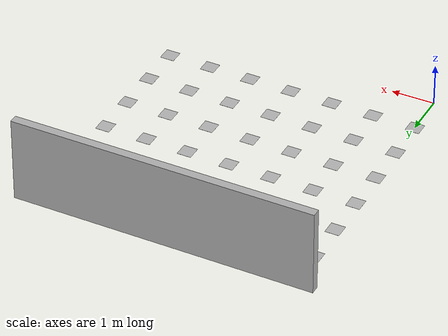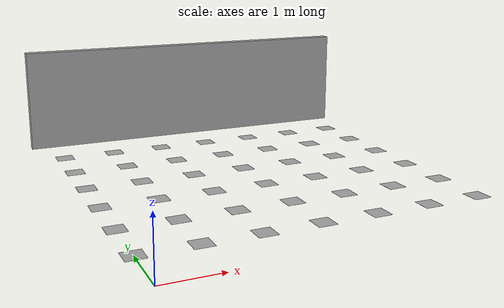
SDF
<sdf version="1.5">
 <world name="default">
  <include><uri>model://sun</uri></include>
  <include><uri>model://aruco_7x7</uri></include>
  <scene>
   <ambient>0.8 0.8 0.8 1</ambient>
   <background>0.8 0.9 1 1</background>
   <shadows>false</shadows>
   <grid>false</grid>
   <origin_visual>false</origin_visual>
  </scene>
  <physics name="default_physics" default="0" type="ode">
   <gravity>0 0 -9.8066</gravity>
   <ode>
    <solver>
     <type>quick</type>
     <iters>10</iters>
     <sor>1.3</sor>
     <use_dynamic_moi_rescaling>0</use_dynamic_moi_rescaling>
    </solver>
    <constraints>
     <cfm>0</cfm>
     <erp>0.2</erp>
     <contact_max_correcting_vel>100</contact_max_correcting_vel>
     <contact_surface_layer>0.001</contact_surface_layer>
    </constraints>
   </ode>
   <max_step_size>0.004</max_step_size>
   <real_time_factor>1</real_time_factor>
   <real_time_update_rate>250</real_time_update_rate>
   <magnetic_field>6.0e-6 2.3e-5 -4.2e-5</magnetic_field>
  </physics>
  <model name="vertical_wall">
   <static>true</static>
   <link name="link">
    <collision name="collision"><geometry><box><size>7 0.2 2</size></box></geometry></collision>
    <visual name="visual">
     <geometry><box><size>7 0.2 2</size></box></geometry>
     <material>
      <ambient>0.5 0.5 0.5 1</ambient>
      <diffuse>0.7 0.7 0.7 1</diffuse>
      <specular>0.8 0.8 0.8 1</specular>
     </material>
    </visual>
   </link>
   <pose>3 7 1 0 0 0</pose>
  </model>
 </world>
</sdf>

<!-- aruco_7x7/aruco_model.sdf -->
<sdf version="1.6">
  <model name="aruco_marker">
    <static>true</static>
    <link name="link">

      <visual name="0">
        <pose>0.0 6.0 0 0 0 0</pose>
        <geometry>
          <box>
            <size>0.33 0.33 0.001</size>
          </box>
        </geometry>
        <material>
          <script>
            <uri>model://aruco_7x7/materials/scripts</uri>
            <uri>model://aruco_7x7/materials/textures</uri>
            <name>aruco/marker_2_0</name>
          </script>
        </material>
      </visual>

      <visual name="1">
        <pose>1.0 6.0 0 0 0 0</pose>
        <geometry>
          <box>
            <size>0.33 0.33 0.001</size>
          </box>
        </geometry>
        <material>
          <script>
            <uri>model://aruco_7x7/materials/scripts</uri>
            <uri>model://aruco_7x7/materials/textures</uri>
            <name>aruco/marker_2_1</name>
          </script>
        </material>
      </visual>

      <visual name="10">
        <pose>2.0 6.0 0 0 0 0</pose>
        <geometry>
          <box>
            <size>0.33 0.33 0.001</size>
          </box>
        </geometry>
        <material>
          <script>
            <uri>model://aruco_7x7/materials/scripts</uri>
            <uri>model://aruco_7x7/materials/textures</uri>
            <name>aruco/marker_2_10</name>
          </script>
        </material>
      </visual>

      <visual name="11">
        <pose>3.0 6.0 0 0 0 0</pose>
        <geometry>
          <box>
            <size>0.33 0.33 0.001</size>
          </box>
        </geometry>
        <material>
          <script>
            <uri>model://aruco_7x7/materials/scripts</uri>
            <uri>model://aruco_7x7/materials/textures</uri>
            <name>aruco/marker_2_11</name>
          </script>
        </material>
      </visual>

      <visual name="12">
        <pose>4.0 6.0 0 0 0 0</pose>
        <geometry>
          <box>
            <size>0.33 0.33 0.001</size>
          </box>
        </geometry>
        <material>
          <script>
            <uri>model://aruco_7x7/materials/scripts</uri>
            <uri>model://aruco_7x7/materials/textures</uri>
            <name>aruco/marker_2_12</name>
          </script>
        </material>
      </visual>

      <visual name="13">
        <pose>5.0 6.0 0 0 0 0</pose>
        <geometry>
          <box>
            <size>0.33 0.33 0.001</size>
          </box>
        </geometry>
        <material>
          <script>
            <uri>model://aruco_7x7/materials/scripts</uri>
            <uri>model://aruco_7x7/materials/textures</uri>
            <name>aruco/marker_2_13</name>
          </script>
        </material>
      </visual>

      <visual name="14">
        <pose>6.0 6.0 0 0 0 0</pose>
        <geometry>
          <box>
            <size>0.33 0.33 0.001</size>
          </box>
        </geometry>
        <material>
          <script>
            <uri>model://aruco_7x7/materials/scripts</uri>
            <uri>model://aruco_7x7/materials/textures</uri>
            <name>aruco/marker_2_14</name>
          </script>
        </material>
      </visual>

      <visual name="15">
        <pose>0.0 5.0 0 0 0 0</pose>
        <geometry>
          <box>
            <size>0.33 0.33 0.001</size>
          </box>
        </geometry>
        <material>
          <script>
            <uri>model://aruco_7x7/materials/scripts</uri>
            <uri>model://aruco_7x7/materials/textures</uri>
            <name>aruco/marker_2_15</name>
          </script>
        </material>
      </visual>

      <visual name="16">
        <pose>1.0 5.0 0 0 0 0</pose>
        <geometry>
          <box>
            <size>0.33 0.33 0.001</size>
          </box>
        </geometry>
        <material>
          <script>
            <uri>model://aruco_7x7/materials/scripts</uri>
            <uri>model://aruco_7x7/materials/textures</uri>
            <name>aruco/marker_2_16</name>
          </script>
        </material>
      </visual>

      <visual name="18">
        <pose>2.0 5.0 0 0 0 0</pose>
        <geometry>
          <box>
            <size>0.33 0.33 0.001</size>
          </box>
        </geometry>
        <material>
          <script>
            <uri>model://aruco_7x7/materials/scripts</uri>
            <uri>model://aruco_7x7/materials/textures</uri>
            <name>aruco/marker_2_18</name>
          </script>
        </material>
      </visual>

      <visual name="19">
        <pose>3.0 5.0 0 0 0 0</pose>
        <geometry>
          <box>
            <size>0.33 0.33 0.001</size>
          </box>
        </geometry>
        <material>
          <script>
            <uri>model://aruco_7x7/materials/scripts</uri>
            <uri>model://aruco_7x7/materials/textures</uri>
            <name>aruco/marker_2_19</name>
          </script>
        </material>
      </visual>

      <visual name="2">
        <pose>4.0 5.0 0 0 0 0</pose>
        <geometry>
          <box>
            <size>0.33 0.33 0.001</size>
          </box>
        </geometry>
        <material>
          <script>
            <uri>model://aruco_7x7/materials/scripts</uri>
            <uri>model://aruco_7x7/materials/textures</uri>
            <name>aruco/marker_2_2</name>
          </script>
        </material>
      </visual>

      <visual name="20">
        <pose>5.0 5.0 0 0 0 0</pose>
        <geometry>
          <box>
            <size>0.33 0.33 0.001</size>
          </box>
        </geometry>
        <material>
          <script>
            <uri>model://aruco_7x7/materials/scripts</uri>
            <uri>model://aruco_7x7/materials/textures</uri>
            <name>aruco/marker_2_20</name>
          </script>
        </material>
      </visual>

      <visual name="21">
        <pose>6.0 5.0 0 0 0 0</pose>
        <geometry>
          <box>
            <size>0.33 0.33 0.001</size>
          </box>
        </geometry>
        <material>
          <script>
            <uri>model://aruco_7x7/materials/scripts</uri>
            <uri>model://aruco_7x7/materials/textures</uri>
            <name>aruco/marker_2_21</name>
          </script>
        </material>
      </visual>

      <visual name="22">
        <pose>0.0 4.0 0 0 0 0</pose>
        <geometry>
          <box>
            <size>0.33 0.33 0.001</size>
          </box>
        </geometry>
        <material>
          <script>
            <uri>model://aruco_7x7/materials/scripts</uri>
            <uri>model://aruco_7x7/materials/textures</uri>
            <name>aruco/marker_2_22</name>
          </script>
        </material>
      </visual>

      <visual name="23">
        <pose>1.0 4.0 0 0 0 0</pose>
        <geometry>
          <box>
            <size>0.33 0.33 0.001</size>
          </box>
        </geometry>
        <material>
          <script>
            <uri>model://aruco_7x7/materials/scripts</uri>
            <uri>model://aruco_7x7/materials/textures</uri>
            <name>aruco/marker_2_23</name>
          </script>
        </material>
      </visual>

      <visual name="24">
        <pose>2.0 4.0 0 0 0 0</pose>
        <geometry>
          <box>
            <size>0.33 0.33 0.001</size>
          </box>
        </geometry>
        <material>
          <script>
            <uri>model://aruco_7x7/materials/scripts</uri>
            <uri>model://aruco_7x7/materials/textures</uri>
            <name>aruco/marker_2_24</name>
          </script>
        </material>
      </visual>

      <visual name="25">
        <pose>3.0 4.0 0 0 0 0</pose>
        <geometry>
          <box>
            <size>0.33 0.33 0.001</size>
          </box>
        </geometry>
        <material>
          <script>
            <uri>model://aruco_7x7/materials/scripts</uri>
            <uri>model://aruco_7x7/materials/textures</uri>
            <name>aruco/marker_2_25</name>
          </script>
        </material>
      </visual>

      <visual name="26">
        <pose>4.0 4.0 0 0 0 0</pose>
        <geometry>
          <box>
            <size>0.33 0.33 0.001</size>
          </box>
        </geometry>
        <material>
          <script>
            <uri>model://aruco_7x7/materials/scripts</uri>
            <uri>model://aruco_7x7/materials/textures</uri>
            <name>aruco/marker_2_26</name>
          </script>
        </material>
      </visual>

      <visual name="27">
        <pose>5.0 4.0 0 0 0 0</pose>
        <geometry>
          <box>
            <size>0.33 0.33 0.001</size>
          </box>
        </geometry>
        <material>
          <script>
            <uri>model://aruco_7x7/materials/scripts</uri>
            <uri>model://aruco_7x7/materials/textures</uri>
            <name>aruco/marker_2_27</name>
          </script>
        </material>
      </visual>

      <visual name="28">
        <pose>6.0 4.0 0 0 0 0</pose>
        <geometry>
          <box>
            <size>0.33 0.33 0.001</size>
          </box>
        </geometry>
        <material>
          <script>
            <uri>model://aruco_7x7/materials/scripts</uri>
            <uri>model://aruco_7x7/materials/textures</uri>
            <name>aruco/marker_2_28</name>
          </script>
        </material>
      </visual>

      <visual name="29">
        <pose>0.0 3.0 0 0 0 0</pose>
        <geometry>
          <box>
            <size>0.33 0.33 0.001</size>
          </box>
        </geometry>
        <material>
          <script>
            <uri>model://aruco_7x7/materials/scripts</uri>
            <uri>model://aruco_7x7/materials/textures</uri>
            <name>aruco/marker_2_29</name>
          </script>
        </material>
      </visual>

      <visual name="3">
        <pose>1.0 3.0 0 0 0 0</pose>
        <geometry>
          <box>
            <size>0.33 0.33 0.001</size>
          </box>
        </geometry>
        <material>
          <script>
            <uri>model://aruco_7x7/materials/scripts</uri>
            <uri>model://aruco_7x7/materials/textures</uri>
            <name>aruco/marker_2_3</name>
          </script>
        </material>
      </visual>

      <visual name="30">
        <pose>2.0 3.0 0 0 0 0</pose>
        <geometry>
          <box>
            <size>0.33 0.33 0.001</size>
          </box>
        </geometry>
        <material>
          <script>
            <uri>model://aruco_7x7/materials/scripts</uri>
            <uri>model://aruco_7x7/materials/textures</uri>
            <name>aruco/marker_2_30</name>
          </script>
        </material>
      </visual>

      <visual name="31">
        <pose>3.0 3.0 0 0 0 0</pose>
        <geometry>
          <box>
            <size>0.33 0.33 0.001</size>
          </box>
        </geometry>
        <material>
          <script>
            <uri>model://aruco_7x7/materials/scripts</uri>
            <uri>model://aruco_7x7/materials/textures</uri>
            <name>aruco/marker_2_31</name>
          </script>
        </material>
      </visual>

      <visual name="32">
        <pose>4.0 3.0 0 0 0 0</pose>
        <geometry>
          <box>
            <size>0.33 0.33 0.001</size>
          </box>
        </geometry>
        <material>
          <script>
            <uri>model://aruco_7x7/materials/scripts</uri>
            <uri>model://aruco_7x7/materials/textures</uri>
            <name>aruco/marker_2_32</name>
          </script>
        </material>
      </visual>

      <visual name="33">
        <pose>5.0 3.0 0 0 0 0</pose>
        <geometry>
          <box>
            <size>0.33 0.33 0.001</size>
          </box>
        </geometry>
        <material>
          <script>
            <uri>model://aruco_7x7/materials/scripts</uri>
            <uri>model://aruco_7x7/materials/textures</uri>
            <name>aruco/marker_2_33</name>
          </script>
        </material>
      </visual>

      <visual name="34">
        <pose>6.0 3.0 0 0 0 0</pose>
        <geometry>
          <box>
            <size>0.33 0.33 0.001</size>
          </box>
        </geometry>
        <material>
          <script>
            <uri>model://aruco_7x7/materials/scripts</uri>
            <uri>model://aruco_7x7/materials/textures</uri>
            <name>aruco/marker_2_34</name>
          </script>
        </material>
      </visual>

      <visual name="35">
        <pose>0.0 2.0 0 0 0 0</pose>
        <geometry>
          <box>
            <size>0.33 0.33 0.001</size>
          </box>
        </geometry>
        <material>
          <script>
            <uri>model://aruco_7x7/materials/scripts</uri>
            <uri>model://aruco_7x7/materials/textures</uri>
            <name>aruco/marker_2_35</name>
          </script>
        </material>
      </visual>

      <visual name="36">
        <pose>1.0 2.0 0 0 0 0</pose>
        <geometry>
          <box>
            <size>0.33 0.33 0.001</size>
          </box>
        </geometry>
        <material>
          <script>
            <uri>model://aruco_7x7/materials/scripts</uri>
            <uri>model://aruco_7x7/materials/textures</uri>
            <name>aruco/marker_2_36</name>
          </script>
        </material>
      </visual>

      <visual name="37">
        <pose>2.0 2.0 0 0 0 0</pose>
        <geometry>
          <box>
            <size>0.33 0.33 0.001</size>
          </box>
        </geometry>
        <material>
          <script>
            <uri>model://aruco_7x7/materials/scripts</uri>
            <uri>model://aruco_7x7/materials/textures</uri>
            <name>aruco/marker_2_37</name>
          </script>
        </material>
      </visual>

      <visual name="38">
        <pose>3.0 2.0 0 0 0 0</pose>
        <geometry>
          <box>
            <size>0.33 0.33 0.001</size>
          </box>
        </geometry>
        <material>
          <script>
            <uri>model://aruco_7x7/materials/scripts</uri>
            <uri>model://aruco_7x7/materials/textures</uri>
            <name>aruco/marker_2_38</name>
          </script>
        </material>
      </visual>

      <visual name="39">
        <pose>4.0 2.0 0 0 0 0</pose>
        <geometry>
          <box>
            <size>0.33 0.33 0.001</size>
          </box>
        </geometry>
        <material>
          <script>
            <uri>model://aruco_7x7/materials/scripts</uri>
            <uri>model://aruco_7x7/materials/textures</uri>
            <name>aruco/marker_2_39</name>
          </script>
        </material>
      </visual>

      <visual name="4">
        <pose>5.0 2.0 0 0 0 0</pose>
        <geometry>
          <box>
            <size>0.33 0.33 0.001</size>
          </box>
        </geometry>
        <material>
          <script>
            <uri>model://aruco_7x7/materials/scripts</uri>
            <uri>model://aruco_7x7/materials/textures</uri>
            <name>aruco/marker_2_4</name>
          </script>
        </material>
      </visual>

      <visual name="40">
        <pose>6.0 2.0 0 0 0 0</pose>
        <geometry>
          <box>
            <size>0.33 0.33 0.001</size>
          </box>
        </geometry>
        <material>
          <script>
            <uri>model://aruco_7x7/materials/scripts</uri>
            <uri>model://aruco_7x7/materials/textures</uri>
            <name>aruco/marker_2_40</name>
          </script>
        </material>
      </visual>

      <visual name="41">
        <pose>0.0 1.0 0 0 0 0</pose>
        <geometry>
          <box>
            <size>0.33 0.33 0.001</size>
          </box>
        </geometry>
        <material>
          <script>
            <uri>model://aruco_7x7/materials/scripts</uri>
            <uri>model://aruco_7x7/materials/textures</uri>
            <name>aruco/marker_2_41</name>
          </script>
        </material>
      </visual>

      <visual name="42">
        <pose>1.0 1.0 0 0 0 0</pose>
        <geometry>
          <box>
            <size>0.33 0.33 0.001</size>
          </box>
        </geometry>
        <material>
          <script>
            <uri>model://aruco_7x7/materials/scripts</uri>
            <uri>model://aruco_7x7/materials/textures</uri>
            <name>aruco/marker_2_42</name>
          </script>
        </material>
      </visual>

      <visual name="43">
        <pose>2.0 1.0 0 0 0 0</pose>
        <geometry>
          <box>
            <size>0.33 0.33 0.001</size>
          </box>
        </geometry>
        <material>
          <script>
            <uri>model://aruco_7x7/materials/scripts</uri>
            <uri>model://aruco_7x7/materials/textures</uri>
            <name>aruco/marker_2_43</name>
          </script>
        </material>
      </visual>

      <visual name="44">
        <pose>3.0 1.0 0 0 0 0</pose>
        <geometry>
          <box>
            <size>0.33 0.33 0.001</size>
          </box>
        </geometry>
        <material>
          <script>
            <uri>model://aruco_7x7/materials/scripts</uri>
            <uri>model://aruco_7x7/materials/textures</uri>
            <name>aruco/marker_2_44</name>
          </script>
        </material>
      </visual>

      <visual name="45">
        <pose>4.0 1.0 0 0 0 0</pose>
        <geometry>
          <box>
            <size>0.33 0.33 0.001</size>
          </box>
        </geometry>
        <material>
          <script>
            <uri>model://aruco_7x7/materials/scripts</uri>
            <uri>model://aruco_7x7/materials/textures</uri>
            <name>aruco/marker_2_45</name>
          </script>
        </material>
      </visual>

      <visual name="46">
        <pose>5.0 1.0 0 0 0 0</pose>
        <geometry>
          <box>
            <size>0.33 0.33 0.001</size>
          </box>
        </geometry>
        <material>
          <script>
            <uri>model://aruco_7x7/materials/scripts</uri>
            <uri>model://aruco_7x7/materials/textures</uri>
            <name>aruco/marker_2_46</name>
          </script>
        </material>
      </visual>

      <visual name="47">
        <pose>6.0 1.0 0 0 0 0</pose>
        <geometry>
          <box>
            <size>0.33 0.33 0.001</size>
          </box>
        </geometry>
        <material>
          <script>
            <uri>model://aruco_7x7/materials/scripts</uri>
            <uri>model://aruco_7x7/materials/textures</uri>
            <name>aruco/marker_2_47</name>
          </script>
        </material>
      </visual>
        </link>
  </model>
</sdf>
